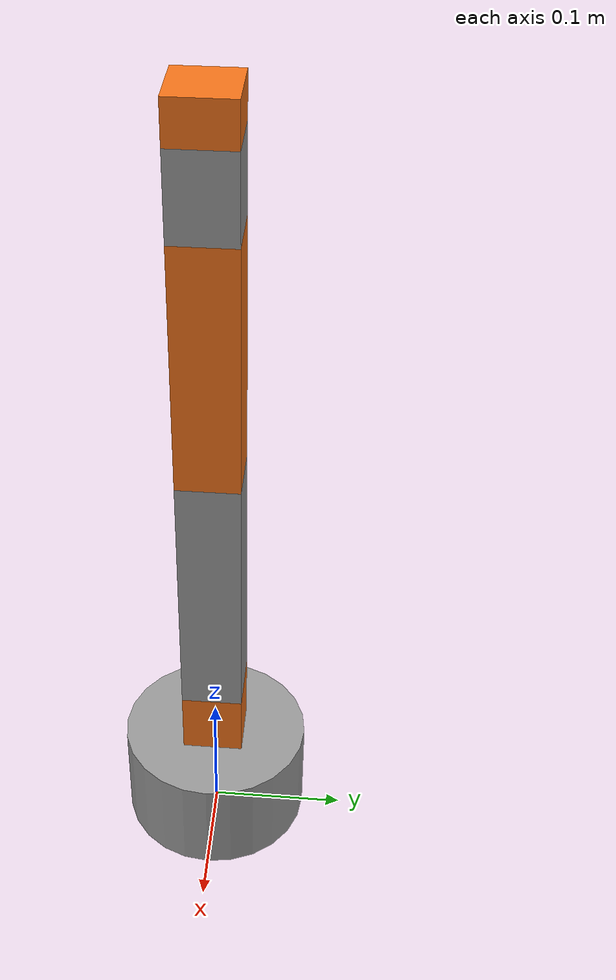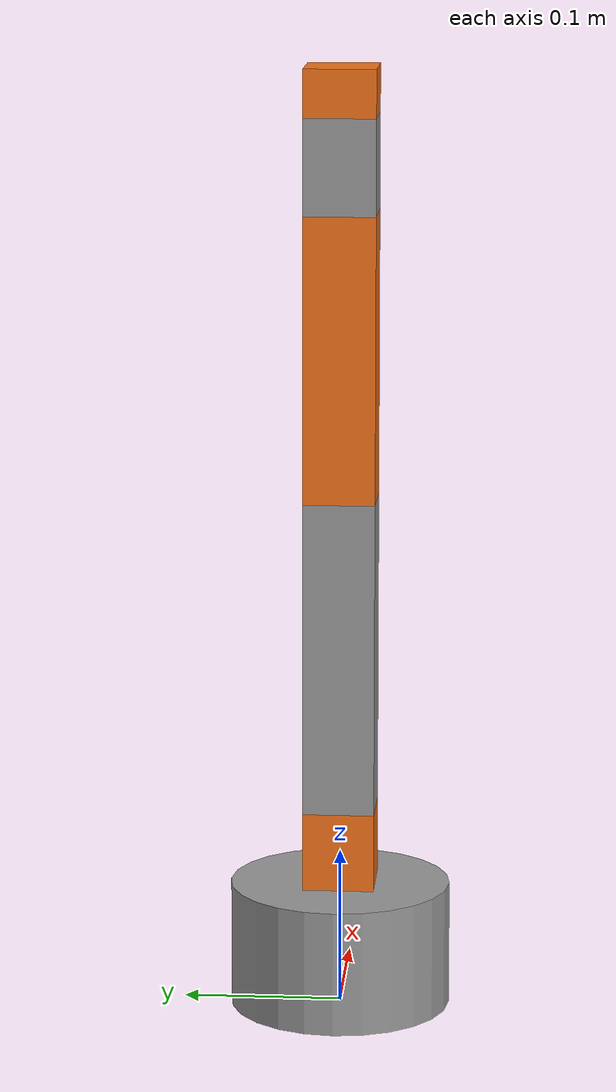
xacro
<?xml version="1.0"?>
<robot xmlns:xacro="http://www.ros.org/wiki/xacro" name="printed_arm">

  <!-- Dimensions [m] -->
  <xacro:property name="base_h"     value="0.080"/>
  <xacro:property name="base_r"     value="0.070"/>
  <xacro:property name="shoulder_h" value="0.050"/>
  <xacro:property name="upper_len"  value="0.200"/>
  <xacro:property name="fore_len"   value="0.180"/>
  <xacro:property name="wrist_len"  value="0.060"/>
  <xacro:property name="flange_len" value="0.030"/>
  <xacro:property name="link_w"     value="0.045"/>

  <xacro:property name="deg" value="${pi/180.0}"/>

  <material name="pla_grey"><color rgba="0.6 0.6 0.6 1.0"/></material>
  <material name="pla_orange"><color rgba="0.95 0.45 0.1 1.0"/></material>

  <!-- Rough box inertia so the model can later be used in Gazebo -->
  <xacro:macro name="box_inertial" params="m x y z oz">
    <inertial>
      <origin xyz="0 0 ${oz}"/>
      <mass value="${m}"/>
      <inertia ixx="${m*(y*y+z*z)/12}" ixy="0" ixz="0"
               iyy="${m*(x*x+z*z)/12}" iyz="0"
               izz="${m*(x*x+y*y)/12}"/>
    </inertial>
  </xacro:macro>

  <xacro:macro name="arm_segment" params="name length mat mass">
    <link name="${name}">
      <visual>
        <origin xyz="0 0 ${length/2}"/>
        <geometry><box size="${link_w} ${link_w} ${length}"/></geometry>
        <material name="${mat}"/>
      </visual>
      <collision>
        <origin xyz="0 0 ${length/2}"/>
        <geometry><box size="${link_w} ${link_w} ${length}"/></geometry>
      </collision>
      <xacro:box_inertial m="${mass}" x="${link_w}" y="${link_w}" z="${length}" oz="${length/2}"/>
    </link>
  </xacro:macro>

  <xacro:macro name="rev_joint" params="name parent child z axis lower upper vel">
    <joint name="${name}" type="revolute">
      <parent link="${parent}"/>
      <child link="${child}"/>
      <origin xyz="0 0 ${z}" rpy="0 0 0"/>
      <axis xyz="${axis}"/>
      <limit lower="${lower}" upper="${upper}" velocity="${vel}" effort="5.0"/>
    </joint>
  </xacro:macro>

  <link name="world"/>

  <link name="base_link">
    <visual>
      <origin xyz="0 0 ${base_h/2}"/>
      <geometry><cylinder radius="${base_r}" length="${base_h}"/></geometry>
      <material name="pla_grey"/>
    </visual>
    <collision>
      <origin xyz="0 0 ${base_h/2}"/>
      <geometry><cylinder radius="${base_r}" length="${base_h}"/></geometry>
    </collision>
    <xacro:box_inertial m="1.0" x="${2*base_r}" y="${2*base_r}" z="${base_h}" oz="${base_h/2}"/>
  </link>

  <joint name="world_to_base" type="fixed">
    <parent link="world"/>
    <child link="base_link"/>
  </joint>

  <xacro:arm_segment name="link1" length="${shoulder_h}" mat="pla_orange" mass="0.30"/>
  <xacro:arm_segment name="link2" length="${upper_len}"  mat="pla_grey"   mass="0.25"/>
  <xacro:arm_segment name="link3" length="${fore_len}"   mat="pla_orange" mass="0.20"/>
  <xacro:arm_segment name="link4" length="${wrist_len}"  mat="pla_grey"   mass="0.10"/>
  <xacro:arm_segment name="link5" length="${flange_len}" mat="pla_orange" mass="0.05"/>

  <xacro:rev_joint name="joint1" parent="base_link" child="link1" z="${base_h}"     axis="0 0 1" lower="${-170*deg}" upper="${170*deg}" vel="1.0"/>
  <xacro:rev_joint name="joint2" parent="link1"     child="link2" z="${shoulder_h}" axis="0 1 0" lower="${-90*deg}"  upper="${90*deg}"  vel="0.5"/>
  <xacro:rev_joint name="joint3" parent="link2"     child="link3" z="${upper_len}"  axis="0 1 0" lower="${-135*deg}" upper="${135*deg}" vel="0.7"/>
  <xacro:rev_joint name="joint4" parent="link3"     child="link4" z="${fore_len}"   axis="0 1 0" lower="${-100*deg}" upper="${100*deg}" vel="1.0"/>
  <xacro:rev_joint name="joint5" parent="link4"     child="link5" z="${wrist_len}"  axis="0 0 1" lower="${-180*deg}" upper="${180*deg}" vel="1.0"/>

  <link name="tool0"/>
  <joint name="link5_to_tool0" type="fixed">
    <parent link="link5"/>
    <child link="tool0"/>
    <origin xyz="0 0 ${flange_len}"/>
  </joint>

</robot>
